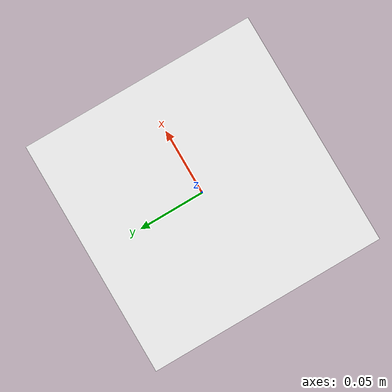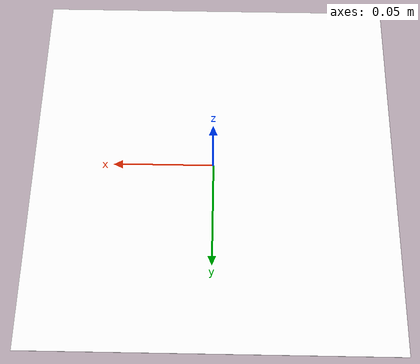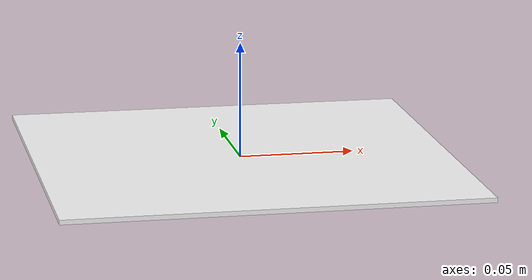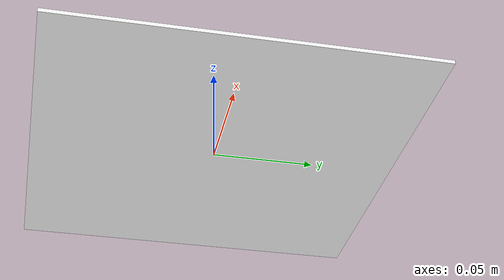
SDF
<?xml version="1.0" ?>
<sdf version="1.6">
  <model name="aruco_marker">
    <static>true</static>
    <pose>0 0 0 0 0 0</pose>
    <link name="marker_link">
      <visual name="visual">
        <!-- The 200 px marker occupies 150 mm; the 20 px white border is extra. -->
        <geometry><box><size>0.18 0.18 0.002</size></box></geometry>
        <material>
          <ambient>1 1 1 1</ambient>
          <diffuse>1 1 1 1</diffuse>
          <specular>0 0 0 1</specular>
          <pbr>
            <metal>
              <albedo_map>/home/ayuan/xarm_ros2_ws/src/xarm_ros2/xarm_planner/models/aruco_marker_texture/aruco_id0.png</albedo_map>
            </metal>
          </pbr>
        </material>
      </visual>
      <collision name="collision">
        <geometry><box><size>0.18 0.18 0.002</size></box></geometry>
      </collision>
    </link>
  </model>
</sdf>
